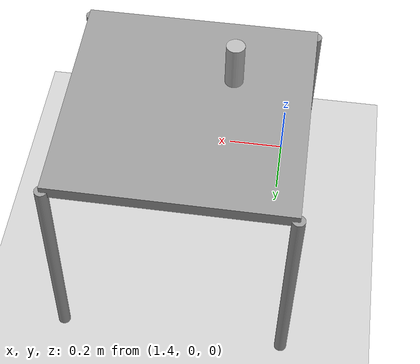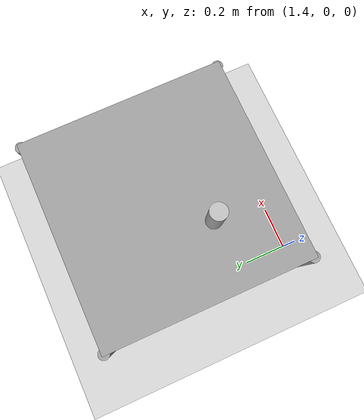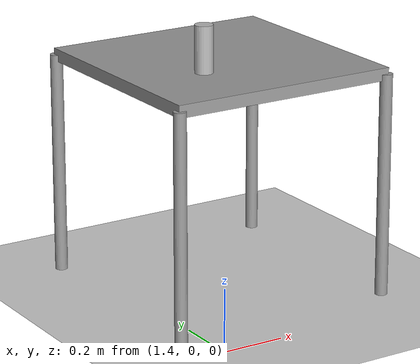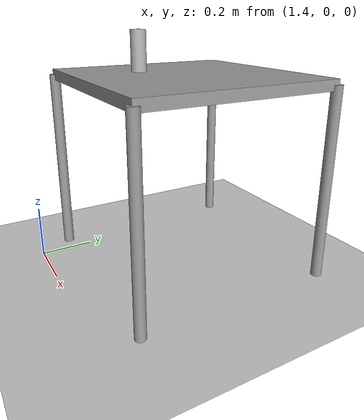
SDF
<sdf version="1.4">
 <world name="default">
  <physics type="ode">
   <gravity>0 0 -9.81</gravity>
   <ode>
    <solver><type>quick</type><iters>20</iters><sor>1.0</sor></solver>
    <constraints>
     <cfm>0.0</cfm>
     <erp>0.2</erp>
     <contact_max_correcting_vel>100.0</contact_max_correcting_vel>
     <contact_surface_layer>0.0</contact_surface_layer>
    </constraints>
   </ode>
   <real_time_update_rate>1000</real_time_update_rate>
   <max_step_size>0.001</max_step_size>
  </physics>
  <include><uri>model://sun</uri></include>
  <include><uri>model://ground_plane</uri></include>
  <include><uri>model://macrolink_table</uri><pose>1.7 0.5 0 0 0 0</pose></include>
  <include><uri>model://coke_can_slim</uri><pose>1.57 0.38 0.815 0 0 -1.57</pose><static>0</static></include>
 </world>
</sdf>

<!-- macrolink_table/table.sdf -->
<sdf version='1.3'>
<model name='table'>
      <static>1</static>
      <link name='link'>
        <collision name='surface'>
          <pose>0.000000 0.000000 0.7200000 0.000000 0.000000 0.000000</pose>
          <geometry>
            <box>
              <size>0.750000 0.750000 0.040000</size>
            </box>
          </geometry>
          <surface>
            <bounce/>
            <friction>
              <ode/>
            </friction>
            <contact>
              <ode/>
            </contact>
          </surface>
        </collision>
        <visual name='visual1'>
          <pose>0.000000 0.000000 0.7200000 0.000000 0.000000 0.000000</pose>
          <geometry>
            <box>
              <size>0.750000 0.750000 0.040000</size>
            </box>
          </geometry>
          <material>
            <script>
              <uri>file://media/materials/scripts/gazebo.material</uri>
              <name>Gazebo/Grey</name>
            </script>
          </material>
        </visual>
        <collision name='front_left_leg'>
          <pose>0.370000 0.370000 0.3600000 0.000000 0.000000 0.000000</pose>
          <geometry>
            <cylinder>
              <radius>0.020000</radius>
              <length>0.7200000</length>
            </cylinder>
          </geometry>
          <surface>
            <bounce/>
            <friction>
              <ode/>
            </friction>
            <contact>
              <ode/>
            </contact>
          </surface>
        </collision>
        <visual name='front_left_leg'>
          <pose>0.370000 0.370000 0.3600000 0.000000 0.000000 0.000000</pose>
          <geometry>
            <cylinder>
              <radius>0.020000</radius>
              <length>0.7200000</length>
            </cylinder>
          </geometry>
          <material>
            <script>
              <uri>file://media/materials/scripts/gazebo.material</uri>
              <name>Gazebo/Grey</name>
            </script>
          </material>
        </visual>
        <collision name='front_right_leg'>
          <pose>0.370000 -0.370000 0.3600000 0.000000 0.000000 0.000000</pose>
          <geometry>
            <cylinder>
              <radius>0.020000</radius>
              <length>0.72000000</length>
            </cylinder>
          </geometry>
          <surface>
            <bounce/>
            <friction>
              <ode/>
            </friction>
            <contact>
              <ode/>
            </contact>
          </surface>
        </collision>
        <visual name='front_right_leg'>
          <pose>0.370000 -0.370000 0.3600000 0.000000 0.000000 0.000000</pose>
          <geometry>
            <cylinder>
              <radius>0.020000</radius>
              <length>0.7200000</length>
            </cylinder>
          </geometry>
          <material>
            <script>
              <uri>file://media/materials/scripts/gazebo.material</uri>
              <name>Gazebo/Grey</name>
            </script>
          </material>
        </visual>
        <collision name='back_right_leg'>
          <pose>-0.370000 -0.370000 0.3600000 0.000000 0.000000 0.000000</pose>
          <geometry>
            <cylinder>
              <radius>0.020000</radius>
              <length>0.72000000</length>
            </cylinder>
          </geometry>
          <surface>
            <bounce/>
            <friction>
              <ode/>
            </friction>
            <contact>
              <ode/>
            </contact>
          </surface>
        </collision>
        <visual name='back_right_leg'>
          <pose>-0.370000 -0.370000 0.3600000 0.000000 0.000000 0.000000</pose>
          <geometry>
            <cylinder>
              <radius>0.020000</radius>
              <length>0.7200000</length>
            </cylinder>
          </geometry>
          <material>
            <script>
              <uri>file://media/materials/scripts/gazebo.material</uri>
              <name>Gazebo/Grey</name>
            </script>
          </material>
        </visual>
        <collision name='back_left_leg'>
          <pose>-0.370000 0.370000 0.3600000 0.000000 0.000000 0.000000</pose>
          <geometry>
            <cylinder>
              <radius>0.020000</radius>
              <length>0.7200000</length>
            </cylinder>
          </geometry>
          <surface>
            <bounce/>
            <friction>
              <ode/>
            </friction>
            <contact>
              <ode/>
            </contact>
          </surface>
        </collision>
        <visual name='back_left_leg'>
          <pose>-0.370000 0.370000 0.3600000 0.000000 0.000000 0.000000</pose>
          <geometry>
            <cylinder>
              <radius>0.020000</radius>
              <length>0.7200000</length>
            </cylinder>
          </geometry>
          <material>
            <script>
              <uri>file://media/materials/scripts/gazebo.material</uri>
              <name>Gazebo/Grey</name>
            </script>
          </material>
        </visual>
        <velocity_decay>
          <linear>0.000000</linear>
          <angular>0.000000</angular>
        </velocity_decay>
        <self_collide>0</self_collide>
        <kinematic>0</kinematic>
        <gravity>1</gravity>
      </link>
    </model>
</sdf>

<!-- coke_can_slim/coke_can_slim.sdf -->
<sdf version='1.4'>
  <model name="coke_can_slim">
    <!-- Without this, sometimes collisions are not reported-->
      <allow_auto_disable>0</allow_auto_disable>
      <static>0</static>
      <link name='link'>
        <inertial>
          <mass>0.15</mass>
          <inertia>
            <ixx>2079.98</ixx>
            <ixy>0.000000</ixy>
            <ixz>0.000000</ixz>
            <iyy>2079.98</iyy>
            <iyz>0.000000</iyz>
            <izz>419.21</izz>
          </inertia>
        </inertial>
        <collision name='collision'>
          <geometry>
            <cylinder>
              <radius>0.029</radius>
              <length>0.15</length>
            </cylinder>
          </geometry>
          <surface>
            <bounce/>
            <friction>
              <ode/>
            </friction>
            <contact>
              <ode/>
            </contact>
          </surface>
        </collision>
        <visual name='visual'>
          <geometry>
            <cylinder>
              <radius>0.029</radius>
              <length>0.15</length>
            </cylinder>
          </geometry>
          <material>
            <script>
              <uri>model://coke_can_slim/material/scripts</uri>
              <uri>model://coke_can_slim/material/textures</uri>
              <name>Custom/coke_can_slim</name>
            </script>
          </material>
        </visual>
        <velocity_decay>
          <linear>0.000000</linear>
          <angular>0.000000</angular>
        </velocity_decay>
        <self_collide>0</self_collide>
        <kinematic>0</kinematic>
        <gravity>1</gravity>
      </link>
  </model>
</sdf>
